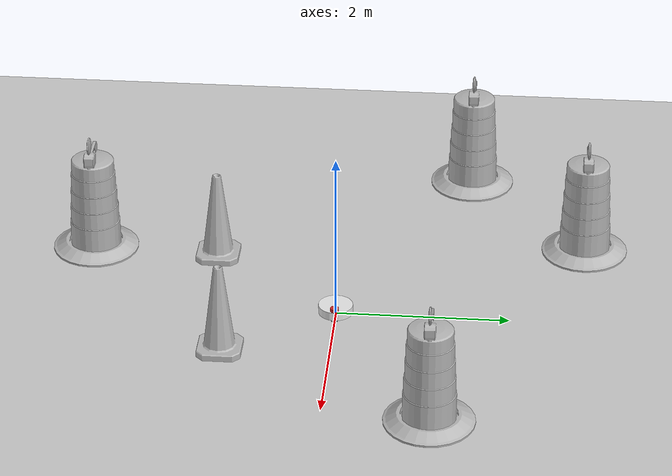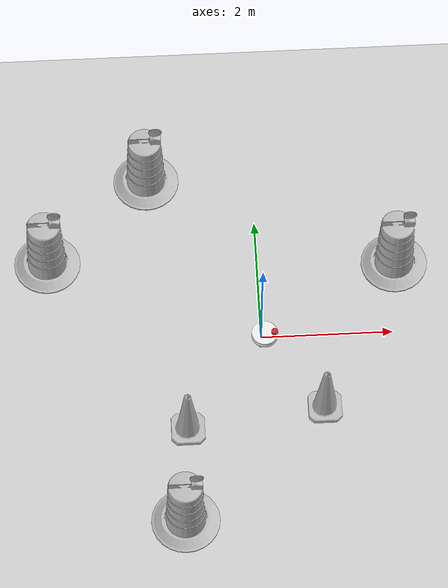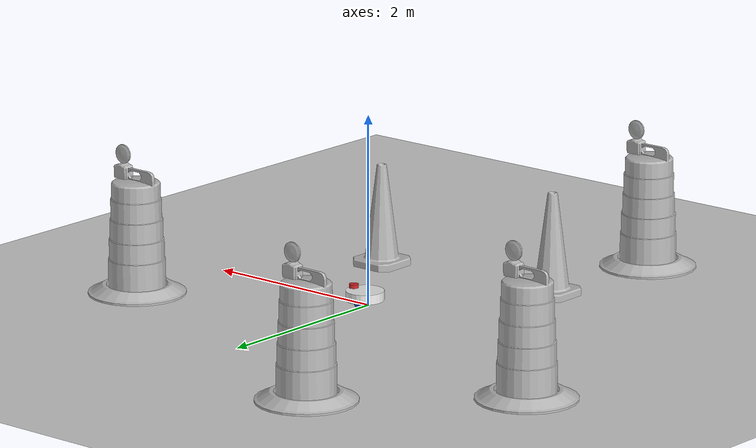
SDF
<sdf version="1.7">
 <world name="default">
  <light name="sun" type="directional">
   <pose>0 0 10 0 -0 0</pose>
   <diffuse>0.8 0.8 0.8 1</diffuse>
   <specular>0.2 0.2 0.2 1</specular>
   <attenuation>
    <range>1000</range>
    <constant>0.9</constant>
    <linear>0.01</linear>
    <quadratic>0.001</quadratic>
   </attenuation>
   <direction>-0.5 0.1 -0.9</direction>
   <spot><inner_angle>0</inner_angle><outer_angle>0</outer_angle><falloff>0</falloff></spot>
  </light>
  <model name="ground_plane">
   <static>1</static>
   <link name="link">
    <collision name="collision">
     <geometry><plane><normal>0 0 1</normal><size>100 100</size></plane></geometry>
     <surface><friction><ode><mu>100</mu><mu2>50</mu2></ode></friction></surface>
    </collision>
    <visual name="visual">
     <cast_shadows>0</cast_shadows>
     <geometry><plane><normal>0 0 1</normal><size>100 100</size></plane></geometry>
     <material>
      <script><uri>file://media/materials/scripts/gazebo.material</uri><name>Gazebo/Grey</name></script>
     </material>
    </visual>
   </link>
  </model>
  <gravity>0 0 -9.8</gravity>
  <magnetic_field>6e-06 2.3e-05 -4.2e-05</magnetic_field>
  <atmosphere type="adiabatic"/>
  <physics type="ode">
   <max_step_size>0.001</max_step_size>
   <real_time_factor>1</real_time_factor>
   <real_time_update_rate>1000</real_time_update_rate>
  </physics>
  <scene><ambient>0.4 0.4 0.4 1</ambient><background>0.7 0.7 0.7 1</background><shadows>1</shadows></scene>
  <spherical_coordinates>
   <surface_model>EARTH_WGS84</surface_model>
   <latitude_deg>0</latitude_deg>
   <longitude_deg>0</longitude_deg>
   <elevation>0</elevation>
   <heading_deg>0</heading_deg>
  </spherical_coordinates>
  <model name="my_bot">
   <link name="base_link">
    <inertial>
     <pose>0.058491 0 0.049434 0 -0 0</pose>
     <mass>5.3</mass>
     <inertia>
      <ixx>0.0554308</ixx>
      <ixy>0</ixy>
      <ixz>0.000424528</ixz>
      <iyy>0.0617987</iyy>
      <iyz>0</iyz>
      <izz>0.106693</izz>
     </inertia>
    </inertial>
    <collision name="base_link_fixed_joint_lump__chassis_collision">
     <pose>0.05 0 0.05 0 -0 0</pose>
     <geometry><cylinder><length>0.1</length><radius>0.2</radius></cylinder></geometry>
    </collision>
    <collision name="base_link_fixed_joint_lump__caster_wheel_collision_1">
     <pose>0.2 0 0 0 -0 0</pose>
     <geometry><sphere><radius>0.05</radius></sphere></geometry>
     <surface><friction><ode><mu>0.001</mu><mu2>0.001</mu2></ode></friction></surface>
    </collision>
    <collision name="base_link_fixed_joint_lump__laser_frame_collision_2">
     <pose>0.2 0 0.12 0 -0 0</pose>
     <geometry><cylinder><length>0.04</length><radius>0.05</radius></cylinder></geometry>
    </collision>
    <visual name="base_link_fixed_joint_lump__chassis_visual">
     <pose>0.05 0 0.05 0 -0 0</pose>
     <geometry><cylinder><length>0.1</length><radius>0.2</radius></cylinder></geometry>
     <material>
      <script><name>Gazebo/White</name><uri>file://media/materials/scripts/gazebo.material</uri></script>
     </material>
    </visual>
    <visual name="base_link_fixed_joint_lump__caster_wheel_visual_1">
     <pose>0.2 0 0 0 -0 0</pose>
     <geometry><sphere><radius>0.05</radius></sphere></geometry>
     <material>
      <script><name>Gazebo/Black</name><uri>file://media/materials/scripts/gazebo.material</uri></script>
     </material>
    </visual>
    <visual name="base_link_fixed_joint_lump__laser_frame_visual_2">
     <pose>0.2 0 0.12 0 -0 0</pose>
     <geometry><cylinder><length>0.04</length><radius>0.05</radius></cylinder></geometry>
     <material>
      <script><name>Gazebo/Red</name><uri>file://media/materials/scripts/gazebo.material</uri></script>
     </material>
    </visual>
    <sensor name="laser" type="ray">
     <visualize>1</visualize>
     <update_rate>10</update_rate>
     <ray>
      <scan>
       <horizontal>
        <samples>360</samples>
        <min_angle>-3.14</min_angle>
        <max_angle>3.14</max_angle>
        <resolution>1</resolution>
       </horizontal>
       <vertical><samples>1</samples><min_angle>0</min_angle><max_angle>0</max_angle></vertical>
      </scan>
      <range><min>0.3</min><max>12</max></range>
     </ray>
     <plugin name="laser_controller" filename="libgazebo_ros_ray_sensor.so">
      <ros><argument>~/out:=scan</argument></ros>
      <output_type>sensor_msgs/LaserScan</output_type>
      <frame_name>laser_frame</frame_name>
     </plugin>
     <pose>0.2 0 0.12 0 -0 0</pose>
    </sensor>
   </link>
   <joint name="left_wheel_joint" type="revolute">
    <pose relative_to="base_link">0 0.15 0 -1.5708 0 0</pose>
    <parent>base_link</parent>
    <child>left_wheel</child>
    <axis>
     <xyz>0 0 1</xyz>
     <limit><lower>-1e+16</lower><upper>1e+16</upper></limit>
     <dynamics><spring_reference>0</spring_reference><spring_stiffness>0</spring_stiffness></dynamics>
    </axis>
   </joint>
   <link name="left_wheel">
    <pose relative_to="left_wheel_joint">0 0 0 0 -0 0</pose>
    <inertial>
     <mass>0.1</mass>
     <inertia>
      <ixx>7.58333e-05</ixx>
      <ixy>0</ixy>
      <ixz>0</ixz>
      <iyy>7.58333e-05</iyy>
      <iyz>0</iyz>
      <izz>0.000125</izz>
     </inertia>
    </inertial>
    <collision name="left_wheel_collision">
     <geometry><cylinder><length>0.04</length><radius>0.05</radius></cylinder></geometry>
    </collision>
    <visual name="left_wheel_visual">
     <geometry><cylinder><length>0.04</length><radius>0.05</radius></cylinder></geometry>
     <material>
      <script><name>Gazebo/Blue</name><uri>file://media/materials/scripts/gazebo.material</uri></script>
     </material>
    </visual>
   </link>
   <joint name="right_wheel_joint" type="revolute">
    <pose relative_to="base_link">0 -0.15 0 1.5708 -0 0</pose>
    <parent>base_link</parent>
    <child>right_wheel</child>
    <axis>
     <xyz>0 0 -1</xyz>
     <limit><lower>-1e+16</lower><upper>1e+16</upper></limit>
     <dynamics><spring_reference>0</spring_reference><spring_stiffness>0</spring_stiffness></dynamics>
    </axis>
   </joint>
   <link name="right_wheel">
    <pose relative_to="right_wheel_joint">0 0 0 0 -0 0</pose>
    <inertial>
     <mass>0.1</mass>
     <inertia>
      <ixx>7.58333e-05</ixx>
      <ixy>0</ixy>
      <ixz>0</ixz>
      <iyy>7.58333e-05</iyy>
      <iyz>0</iyz>
      <izz>0.000125</izz>
     </inertia>
    </inertial>
    <collision name="right_wheel_collision">
     <geometry><cylinder><length>0.04</length><radius>0.05</radius></cylinder></geometry>
    </collision>
    <visual name="right_wheel_visual">
     <geometry><cylinder><length>0.04</length><radius>0.05</radius></cylinder></geometry>
     <material>
      <script><name>Gazebo/Blue</name><uri>file://media/materials/scripts/gazebo.material</uri></script>
     </material>
    </visual>
   </link>
   <static>0</static>
   <plugin name="gazebo_ros2_control" filename="libgazebo_ros2_control.so">
    <parameters>/home/synguyen25/dev_ws/install/ute-datn/share/ute-datn/config/my_controllers.yaml</parameters>
   </plugin>
   <pose>-0.001098 0.000762 0.049999 3e-06 -6e-06 -0.001671</pose>
  </model>
  <model name="Construction Barrel">
   <link name="link">
    <inertial>
     <pose>0 0 0.4 0 -0 0</pose>
     <mass>500</mass>
     <inertia><ixx>51.2096</ixx><iyy>51.2096</iyy><izz>25</izz><ixy>0</ixy><ixz>0</ixz><iyz>0</iyz></inertia>
    </inertial>
    <collision name="collision">
     <geometry><mesh><uri>model://construction_barrel/meshes/construction_barrel.dae</uri></mesh></geometry>
    </collision>
    <visual name="visual">
     <geometry><mesh><uri>model://construction_barrel/meshes/construction_barrel.dae</uri></mesh></geometry>
    </visual>
   </link>
   <pose>-3.23274 1.43547 -1e-06 0 5e-06 -1e-05</pose>
  </model>
  <model name="Construction Barrel_0">
   <link name="link">
    <inertial>
     <pose>0 0 0.4 0 -0 0</pose>
     <mass>500</mass>
     <inertia><ixx>51.2096</ixx><iyy>51.2096</iyy><izz>25</izz><ixy>0</ixy><ixz>0</ixz><iyz>0</iyz></inertia>
    </inertial>
    <collision name="collision">
     <geometry><mesh><uri>model://construction_barrel/meshes/construction_barrel.dae</uri></mesh></geometry>
    </collision>
    <visual name="visual">
     <geometry><mesh><uri>model://construction_barrel/meshes/construction_barrel.dae</uri></mesh></geometry>
    </visual>
   </link>
   <pose>-1.65531 2.84618 -2e-06 -0 7e-06 -8e-06</pose>
  </model>
  <model name="Construction Barrel_1">
   <link name="link">
    <inertial>
     <pose>0 0 0.4 0 -0 0</pose>
     <mass>500</mass>
     <inertia><ixx>51.2096</ixx><iyy>51.2096</iyy><izz>25</izz><ixy>0</ixy><ixz>0</ixz><iyz>0</iyz></inertia>
    </inertial>
    <collision name="collision">
     <geometry><mesh><uri>model://construction_barrel/meshes/construction_barrel.dae</uri></mesh></geometry>
    </collision>
    <visual name="visual">
     <geometry><mesh><uri>model://construction_barrel/meshes/construction_barrel.dae</uri></mesh></geometry>
    </visual>
   </link>
   <pose>-1.28635 -3.00036 -1e-06 3e-06 1e-05 -7e-06</pose>
  </model>
  <model name="Construction Cone">
   <link name="link">
    <collision name="collision">
     <geometry>
      <mesh><scale>10 10 10</scale><uri>model://construction_cone/meshes/construction_cone.dae</uri></mesh>
     </geometry>
    </collision>
    <visual name="visual">
     <geometry>
      <mesh><scale>10 10 10</scale><uri>model://construction_cone/meshes/construction_cone.dae</uri></mesh>
     </geometry>
    </visual>
    <inertial>
     <inertia><ixx>1</ixx><ixy>0</ixy><ixz>0</ixz><iyy>1</iyy><iyz>0</iyz><izz>1</izz></inertia>
     <mass>1</mass>
    </inertial>
   </link>
   <pose>-1.18751 -1.51202 -6e-06 2e-06 -0 0</pose>
  </model>
  <model name="Construction Cone_0">
   <link name="link">
    <collision name="collision">
     <geometry>
      <mesh><scale>10 10 10</scale><uri>model://construction_cone/meshes/construction_cone.dae</uri></mesh>
     </geometry>
    </collision>
    <visual name="visual">
     <geometry>
      <mesh><scale>10 10 10</scale><uri>model://construction_cone/meshes/construction_cone.dae</uri></mesh>
     </geometry>
    </visual>
    <inertial>
     <inertia><ixx>1</ixx><ixy>0</ixy><ixz>0</ixz><iyy>1</iyy><iyz>0</iyz><izz>1</izz></inertia>
     <mass>1</mass>
    </inertial>
   </link>
   <pose>0.884633 -1.24423 -0 0 -0 0</pose>
  </model>
  <model name="Construction Barrel_2">
   <link name="link">
    <inertial>
     <pose>0 0 0.4 0 -0 0</pose>
     <mass>500</mass>
     <inertia><ixx>51.2096</ixx><iyy>51.2096</iyy><izz>25</izz><ixy>0</ixy><ixz>0</ixz><iyz>0</iyz></inertia>
    </inertial>
    <collision name="collision">
     <geometry><mesh><uri>model://construction_barrel/meshes/construction_barrel.dae</uri></mesh></geometry>
    </collision>
    <visual name="visual">
     <geometry><mesh><uri>model://construction_barrel/meshes/construction_barrel.dae</uri></mesh></geometry>
    </visual>
   </link>
   <pose>2.11626 1.19512 -1e-06 3e-06 -2e-06 -2e-06</pose>
  </model>
 </world>
</sdf>
